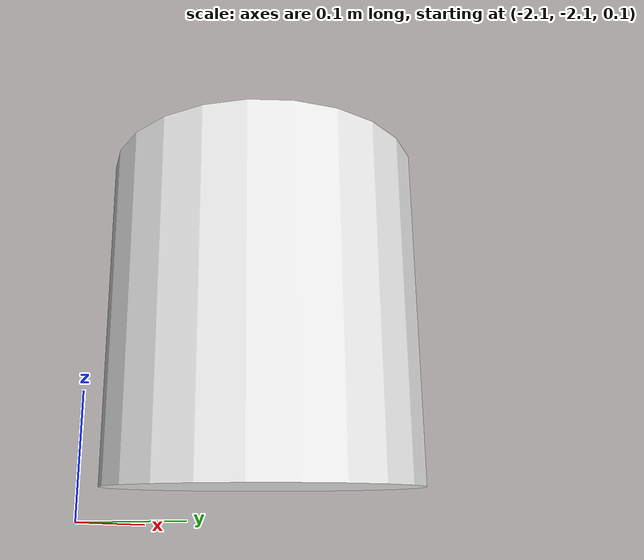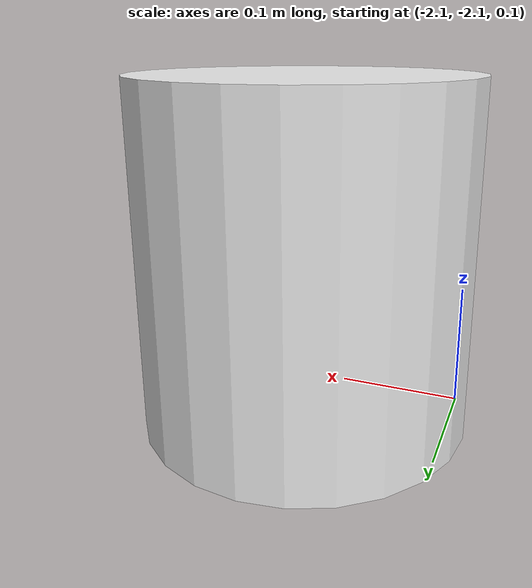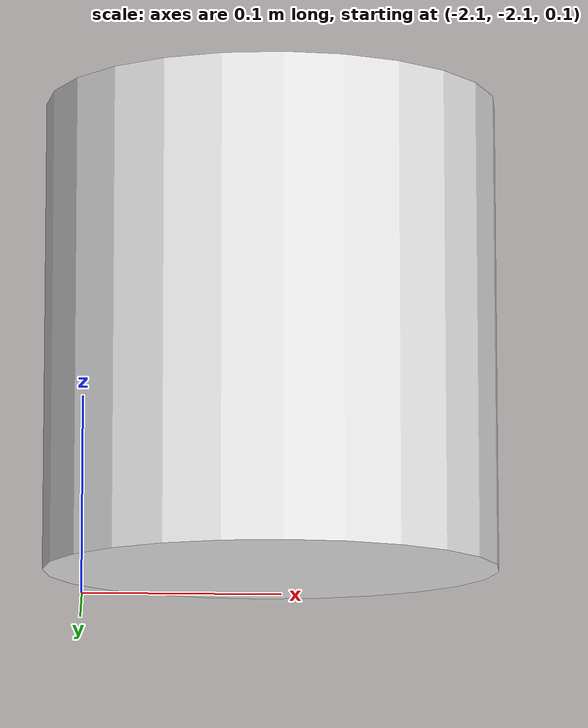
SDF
<?xml version='1.0'?>
<sdf version='1.8'>
    <model name="obstacle2">
      <pose>-2 -2 0.25 0 0 0</pose>
      <static>false</static>
      <link name="link">
        <collision name="obstacle2_collision">
          <geometry>
            <cylinder>
              <radius>0.12</radius>
              <length>0.25</length>
            </cylinder>
          </geometry>
        </collision>

        <visual name="obstacle2_visual">
          <geometry>
            <cylinder>
              <radius>0.12</radius>
              <length>0.25</length>
            </cylinder>
          </geometry>
          <material>
            <script>
              <uri>file://media/materials/scripts/gazebo.material</uri>
              <name>Gazebo/White</name>
            </script>
          </material>
        </visual>
      </link>
    </model>
</sdf>
